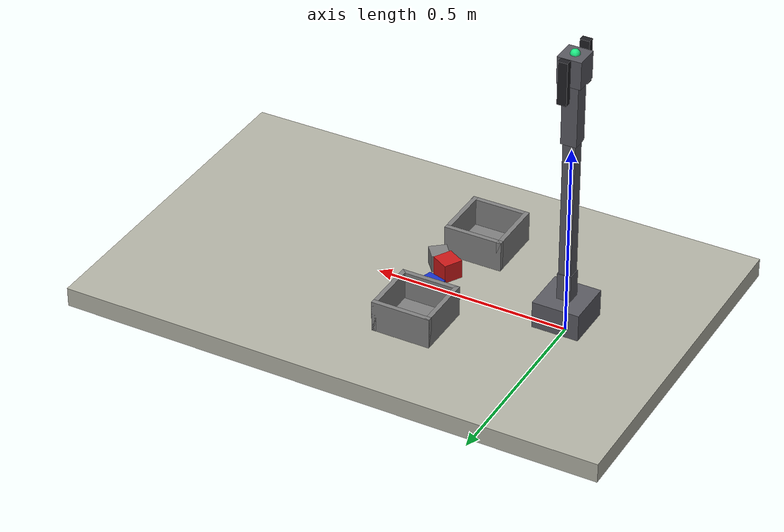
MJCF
<mujoco model="Autonomous reference tabletop arm revision_regression_scene_task_req_a_tabletop_robot_arm_that_sorts_red_and_blue_blo_stress_001">
  <compiler angle="radian" coordinate="local" />
  <option timestep="0.002" gravity="0 0 -9.81" />
  <default>
    <joint damping="0.8" armature="0.01" />
    <geom friction="1 0.1 0.01" />
  </default>
  <asset>
    <material name="mat_red" rgba="0.8 0.1 0.1 1" />
    <material name="mat_blue" rgba="0.1 0.2 0.8 1" />
    <material name="mat_gray" rgba="0.5 0.5 0.5 1" />
    <material name="mat_link" rgba="0.35 0.35 0.38 1" />
  </asset>
  <worldbody>
    <light name="key" pos="0 0 2" dir="0 0 -1" />
    <geom name="table" type="box" size="0.7 0.45 0.025" pos="0.4 0 0" rgba="0.7 0.7 0.65 1" />
    <body name="base_link" pos="0.0 0.0 0.025">
      <geom name="base_link_geom" type="box" size="0.06 0.06 0.035" pos="0 0 0.035" mass="0.45" material="mat_link" />
      <body name="upper_link" pos="0.0 0.0 0.07">
        <joint name="base_yaw" type="hinge" axis="0.0 0.0 1.0" pos="0 0 0" limited="true" range="-3.14 3.14" />
        <geom name="upper_link_geom" type="box" size="0.018 0.018 0.035" pos="0 0 0.035" mass="0.22" material="mat_link" />
        <body name="forearm_link" pos="0.0 0.0 0.07">
          <joint name="shoulder_pitch" type="hinge" axis="0.0 1.0 0.0" pos="0 0 0" limited="true" range="-1.57 1.57" />
          <geom name="forearm_link_geom" type="box" size="0.016 0.016 0.1785" pos="0 0 0.1785" mass="0.18" material="mat_link" />
          <body name="wrist_link" pos="0.0 0.0 0.357">
            <joint name="elbow_pitch" type="hinge" axis="0.0 1.0 0.0" pos="0 0 0" limited="true" range="-1.57 1.57" />
            <geom name="wrist_link_geom" type="box" size="0.02 0.02 0.08" pos="0 0 0.08" mass="0.035" material="mat_link" />
            <camera name="wrist_rgbd_camera" pos="0.03 0.0 0.04" xyaxes="0 -1 0 0 0 1" mode="fixed" user="0.0 0.0 0.0" />
            <body name="gripper_link" pos="0.0 0.0 0.16">
              <geom name="gripper_link_geom" type="box" size="0.03 0.03 0.035" pos="0 0 0.035" mass="0.04" material="mat_link" />
              <site name="ee_site" pos="0 0 0.07" size="0.012" rgba="0.1 0.9 0.5 1" />
              <site name="grasp_site" pos="0 0 0.015" size="0.01" rgba="1 0.7 0.1 1" />
              <body name="left_gripper_finger" pos="0 0.055 0.07">
                <joint name="left_gripper_slide" type="slide" axis="0 -1 0" limited="true" range="0 0.04" damping="2.0" />
                <geom name="left_gripper_pad" type="box" size="0.012 0.008 0.055" pos="0 0 -0.045" mass="0.025" rgba="0.12 0.12 0.14 1" friction="1.5 0.1 0.01" />
              </body>
              <body name="right_gripper_finger" pos="0 -0.055 0.07">
                <joint name="right_gripper_slide" type="slide" axis="0 1 0" limited="true" range="0 0.04" damping="2.0" />
                <geom name="right_gripper_pad" type="box" size="0.012 0.008 0.055" pos="0 0 -0.045" mass="0.025" rgba="0.12 0.12 0.14 1" friction="1.5 0.1 0.01" />
              </body>
            </body>
          </body>
        </body>
      </body>
    </body>
    <body name="obj_red_block" pos="0.3288 -0.0285 0.0506" euler="0 0 -2.0785">
      <freejoint name="free_red_block" />
      <geom name="red_block" type="box" size="0.0246 0.0246 0.0246" mass="0.0431" friction="0.987 0.1 0.01" material="mat_red" />
    </body>
    <body name="obj_blue_block" pos="0.3219 0.0725 0.0512" euler="0 0 1.2858">
      <freejoint name="free_blue_block" />
      <geom name="blue_block" type="box" size="0.0252 0.0252 0.0252" mass="0.065" friction="1.212 0.1 0.01" material="mat_blue" />
    </body>
    <geom name="red_bin" type="box" size="0.07 0.07 0.004" pos="0.3028 -0.1811 0.029" material="mat_gray" />
    <geom name="red_bin_wall_px" type="box" size="0.006 0.07600000000000001 0.04" pos="0.3728 -0.1811 0.065" material="mat_gray" />
    <geom name="red_bin_wall_nx" type="box" size="0.006 0.07600000000000001 0.04" pos="0.2328 -0.1811 0.065" material="mat_gray" />
    <geom name="red_bin_wall_py" type="box" size="0.07600000000000001 0.006 0.04" pos="0.3028 -0.1111 0.065" material="mat_gray" />
    <geom name="red_bin_wall_ny" type="box" size="0.07600000000000001 0.006 0.04" pos="0.3028 -0.2511 0.065" material="mat_gray" />
    <geom name="blue_bin" type="box" size="0.07 0.07 0.004" pos="0.306 0.1737 0.029" material="mat_gray" />
    <geom name="blue_bin_wall_px" type="box" size="0.006 0.07600000000000001 0.04" pos="0.376 0.1737 0.065" material="mat_gray" />
    <geom name="blue_bin_wall_nx" type="box" size="0.006 0.07600000000000001 0.04" pos="0.236 0.1737 0.065" material="mat_gray" />
    <geom name="blue_bin_wall_py" type="box" size="0.07600000000000001 0.006 0.04" pos="0.306 0.2437 0.065" material="mat_gray" />
    <geom name="blue_bin_wall_ny" type="box" size="0.07600000000000001 0.006 0.04" pos="0.306 0.1037 0.065" material="mat_gray" />
    <body name="obj_distractor_1_0" pos="0.3656 -0.0538 0.0486" euler="0 0 2.2574">
      <freejoint name="free_distractor_1_0" />
      <geom name="distractor_1_0" type="box" size="0.0226 0.0226 0.0226" mass="0.0577" friction="1.167 0.1 0.01" material="mat_gray" />
    </body>
  </worldbody>
  <actuator>
    <motor name="base_yaw_motor" joint="base_yaw" gear="1" forcerange="-12.0 12.0" />
    <motor name="shoulder_pitch_motor" joint="shoulder_pitch" gear="1" forcerange="-12.0 12.0" />
    <motor name="elbow_pitch_motor" joint="elbow_pitch" gear="1" forcerange="-12.0 12.0" />
    <motor name="left_gripper_slide_motor" joint="left_gripper_slide" gear="1" forcerange="-25 25" />
    <motor name="right_gripper_slide_motor" joint="right_gripper_slide" gear="1" forcerange="-25 25" />
  </actuator>
  <sensor>
    <framepos name="wrist_rgbd_camera_pose" objtype="camera" objname="wrist_rgbd_camera" />
    <framequat name="wrist_rgbd_camera_orientation" objtype="camera" objname="wrist_rgbd_camera" />
  </sensor>
</mujoco>
